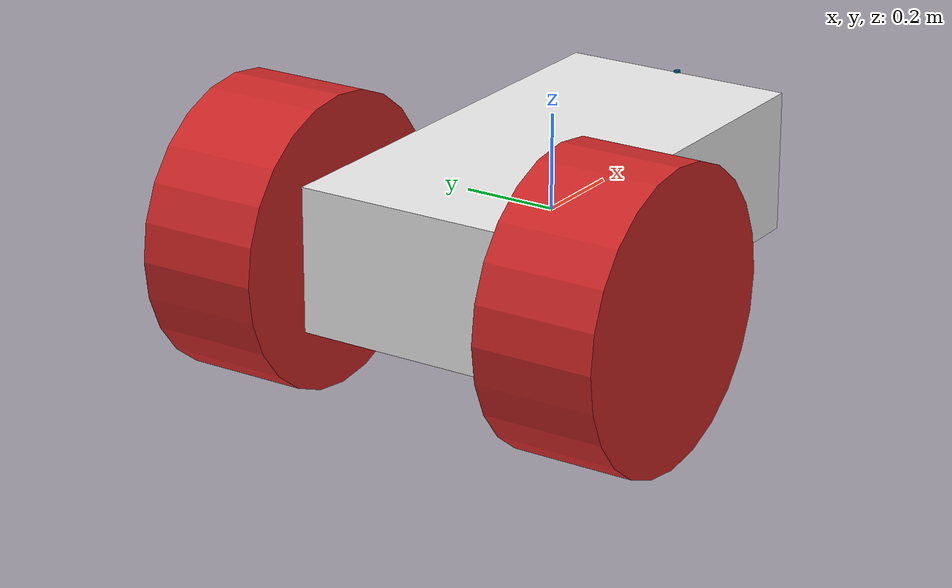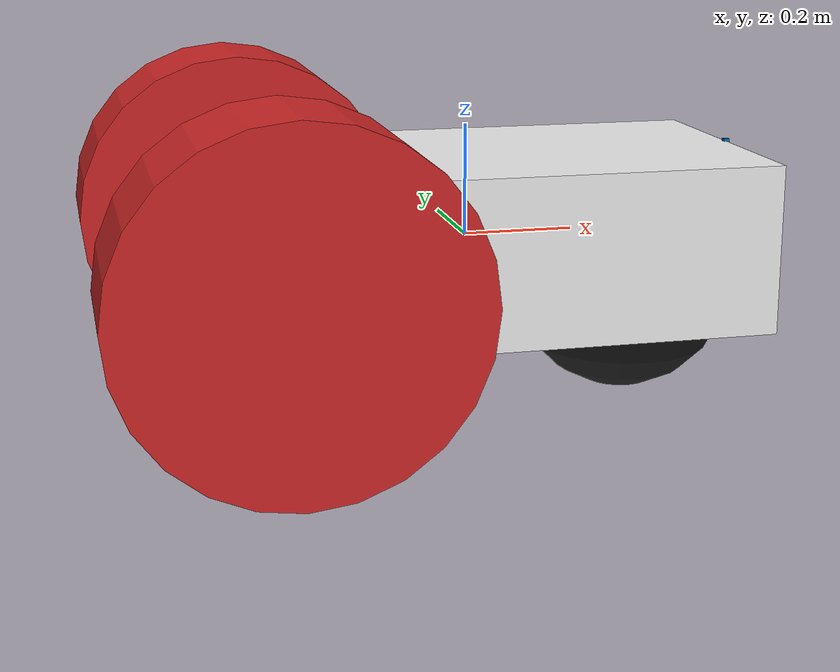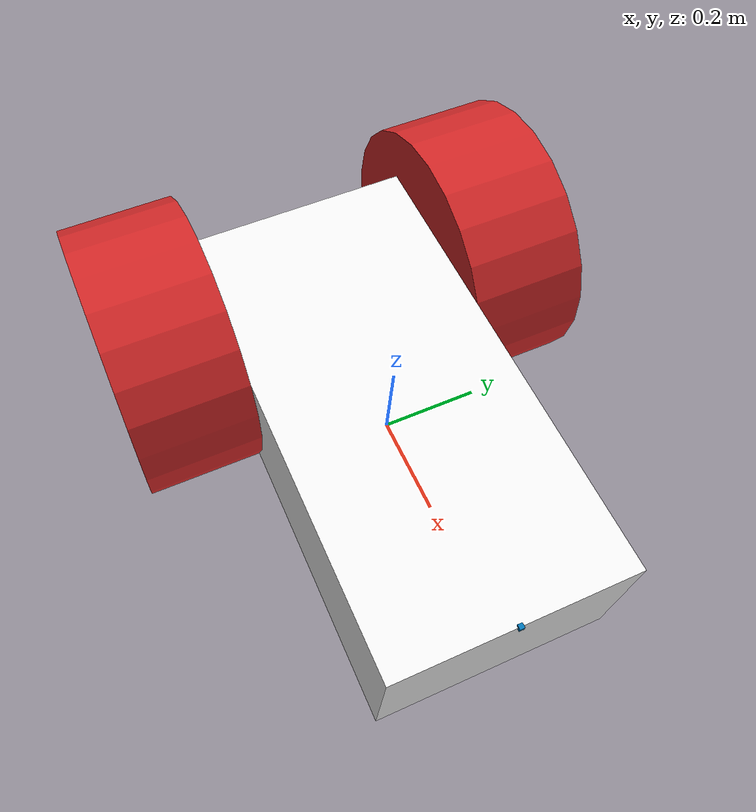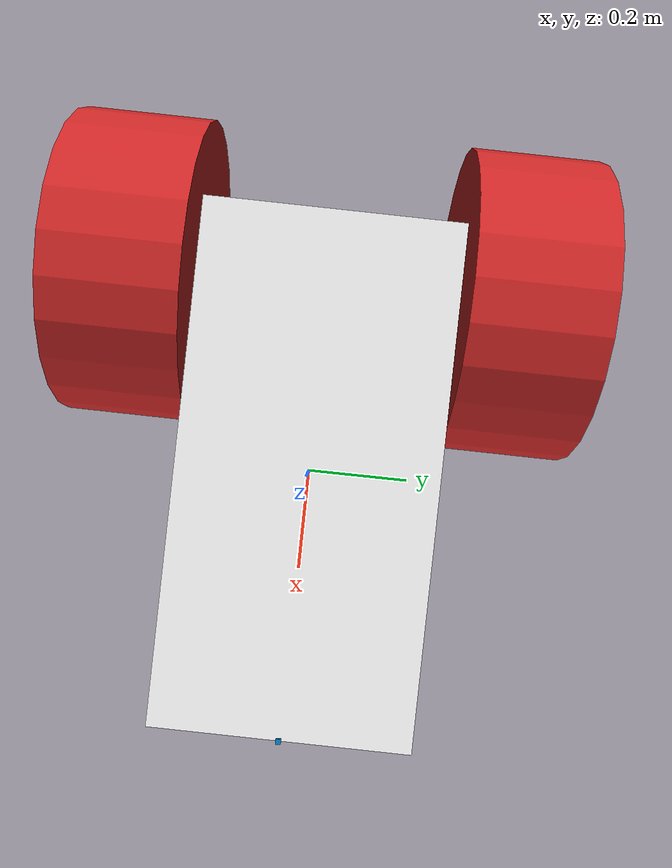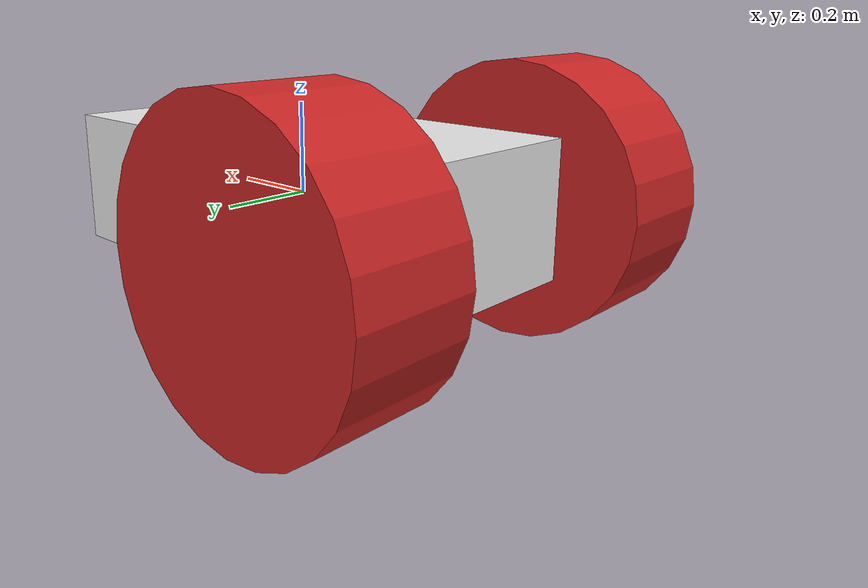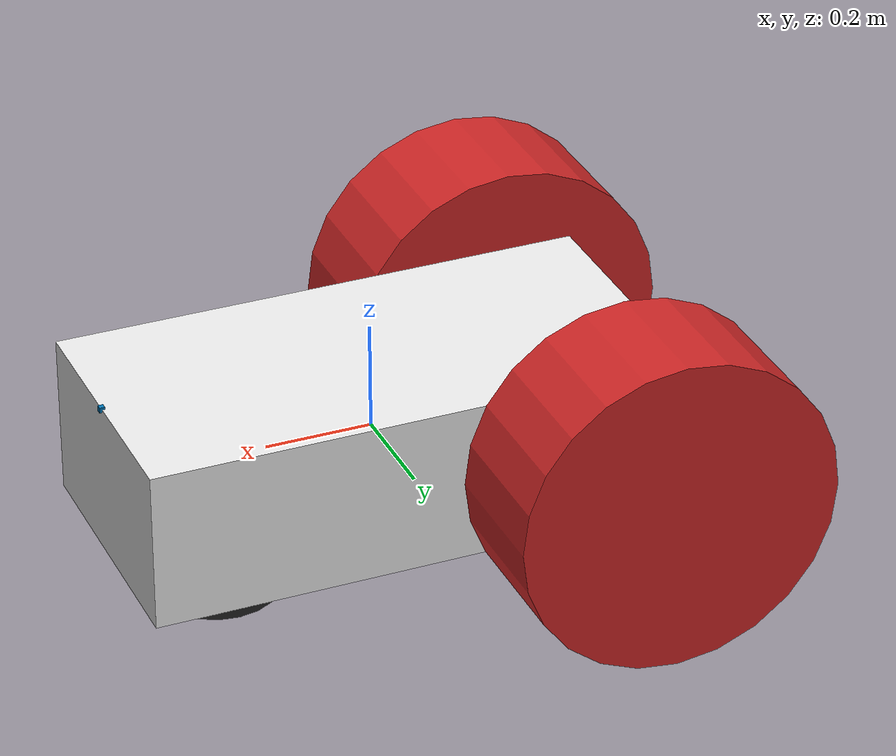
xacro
<?xml version="1.0"?>
<robot xmlns:xacro="http://www.ros.org/wiki/xacro" name="simple_rover">
  <xacro:include filename="$(find simulation)/urdf/camera.urdf.xacro" />

  <xacro:property name="wheel_separation" value="0.070" />
  <xacro:property name="wheel_radius" value="0.3" />
  <xacro:property name="caster_wheel_radius" value="0.2" />
  <xacro:property name="wheel_width" value="0.25" />
  <xacro:property name="body_width" value="0.5" />
  <xacro:property name="body_length" value="1.0" />
  <xacro:property name="body_height" value="0.3" />

  <gazebo reference="base_link">
    <material>Gazebo/White</material>
    <mu1>0.2</mu1>
    <mu2>0.2</mu2>
  </gazebo>

  <gazebo reference="right_wheel">
    <material>Gazebo/Red</material>
    <mu1>0.84</mu1>
    <mu2>0.84</mu2>
  </gazebo>

  <gazebo reference="left_wheel">
    <material>Gazebo/Red</material>
    <mu1>0.84</mu1>
    <mu2>0.84</mu2>
  </gazebo>

  <gazebo reference="caster_wheel">
    <material>Gazebo/Black</material>
    <mu1>0.84</mu1>
    <mu2>0.84</mu2>
  </gazebo>

  <link name="base_link">
    <visual>
      <geometry>
        <box size="${body_length} ${body_width} ${body_height}"/>
      </geometry>
    </visual>
    <collision>
      <geometry>
        <box size="${body_length} ${body_width} ${body_height}"/>
      </geometry>
    </collision>
    <inertial>
      <mass value="1"/>
      <inertia ixx="0.166667" ixy="0" ixz="0" iyy="0.166667" iyz="0" izz="0.166667"/>
    </inertial>
  </link>

  <link name="left_wheel">
    <visual>
      <geometry>
        <cylinder radius="${wheel_radius}" length="${wheel_width}"/>
      </geometry>
    </visual>
    <collision>
      <geometry>
        <cylinder radius="${wheel_radius}" length="${wheel_width}"/>
      </geometry>
    </collision>
    <inertial>
      <mass value="1"/>
      <inertia ixx="0.145833" ixy="0.0" ixz="0.0" iyy="0.145833" iyz="0.0" izz="0.125"/>
    </inertial>
  </link>

  <link name="right_wheel">
    <visual>
      <geometry>
        <cylinder radius="${wheel_radius}" length="${wheel_width}"/>
      </geometry>
    </visual>
    <collision>
      <geometry>
        <cylinder radius="${wheel_radius}" length="${wheel_width}"/>
      </geometry>
    </collision>
    <inertial>
      <mass value="1"/>
      <inertia ixx="0.145833" ixy="0.0" ixz="0.0" iyy="0.145833" iyz="0.0" izz="0.125"/>
    </inertial>
  </link>

  <link name="caster_wheel">
    <visual>
      <geometry>
        <sphere radius="${caster_wheel_radius}"/>
      </geometry>
    </visual>
    <collision>
      <geometry>
        <sphere radius="${caster_wheel_radius}"/>
      </geometry>
    </collision>
    <inertial>
      <mass value="1"/>
      <inertia ixx="0.1" ixy="0.0" ixz="0.0" iyy="0.1" iyz="0.0" izz="0.1"/>
    </inertial>
  </link>

  <link name="camera_link">
    <visual>
      <geometry>
        <box size="0.01 0.01 0.01"/>
      </geometry>
    </visual>
    <collision>
      <geometry>
        <box size="0.01 0.01 0.01"/>
      </geometry>
    </collision>
    <inertial>
      <mass value="0.01"/>
      <inertia ixx="0.0001" ixy="0.0" ixz="0.0" iyy="0.0001" iyz="0.0" izz="0.0001"/>
    </inertial>
  </link>

  <!-- 카메라 센서 정의 (camera.urdf.xacro 안에서 camera_link에 붙을 것) -->
  <xacro:normal_camera robot_name="rover">
  </xacro:normal_camera>

  <joint name="joint_left" type="continuous">
    <parent link="base_link"/>
    <child link="left_wheel"/>
    <origin xyz="-0.375 -0.375 0" rpy="1.5707 0 0"/>
    <axis xyz="0 0 1"/>
    <dynamics friction="0.1"/>
  </joint>

  <joint name="joint_right" type="continuous">
    <parent link="base_link"/>
    <child link="right_wheel"/>
    <origin xyz="-0.375 0.375 0" rpy="1.5707 0 0"/>
    <axis xyz="0 0 1"/>
    <dynamics friction="0.1"/>
  </joint>

  <joint name="joint_caster_wheel" type="continuous">
    <parent link="base_link"/>
    <child link="caster_wheel"/>
    <origin xyz="0.3 0 -0.1" rpy="0 0 0"/>
    <dynamics friction="0.1"/>
  </joint>

  <!-- 카메라를 본체 정면 중앙에 배치하고, roll 180도(상하 반전) -->
  <joint name="camera_joint" type="fixed">
    <parent link="base_link"/>
    <child link="camera_link"/>
    <!-- x: 앞쪽(body_length/2), y: 중앙(0), z: 높이(body_height/2) -->
    <!-- rpy: roll=3.14159 → 영상이 뒤집혀 나오도록 -->
    <origin xyz="${body_length/2} 0 ${body_height/2}" rpy="3.14159 0 0"/>
  </joint>

  <gazebo>
    <plugin filename="gz-sim-diff-drive-system" name="gz::sim::systems::DiffDrive">
      <left_joint>joint_left</left_joint>
      <right_joint>joint_right</right_joint>
      <wheel_separation>${wheel_separation + wheel_width}</wheel_separation>
      <wheel_radius>${wheel_radius}</wheel_radius>
      <odom_publish_frequency>30</odom_publish_frequency>
      <max_wheel_torque>20</max_wheel_torque>
      <max_wheel_acceleration>1.0</max_wheel_acceleration>
      <topic>cmd_vel</topic>
      <odom_topic>odom</odom_topic>
      <frame_id>odom</frame_id>
      <child_frame_id>base_link</child_frame_id>
    </plugin>
  </gazebo>

</robot>
